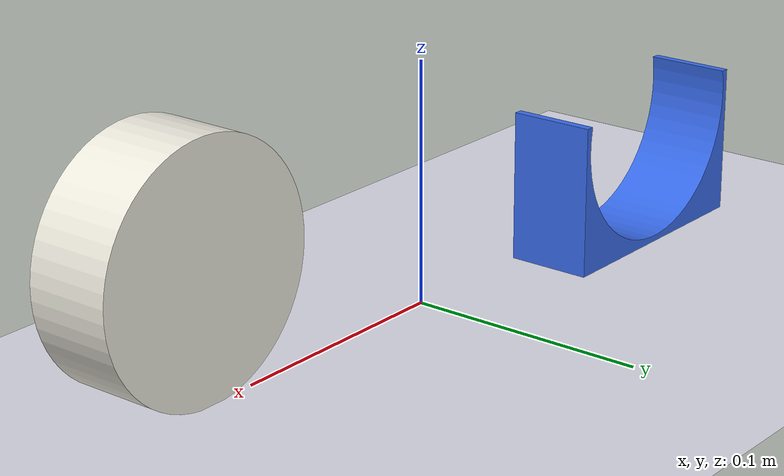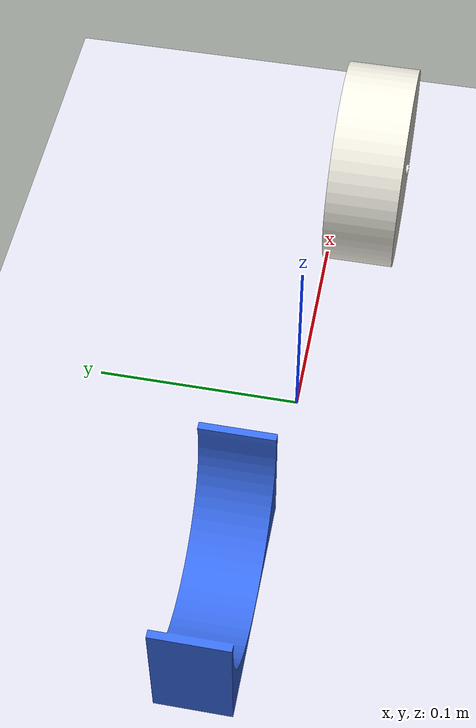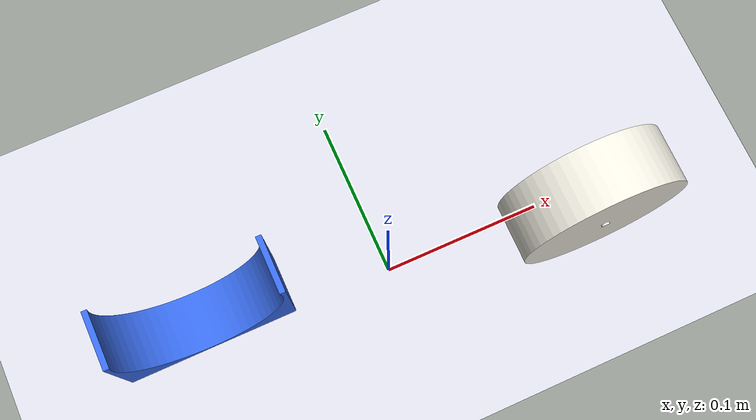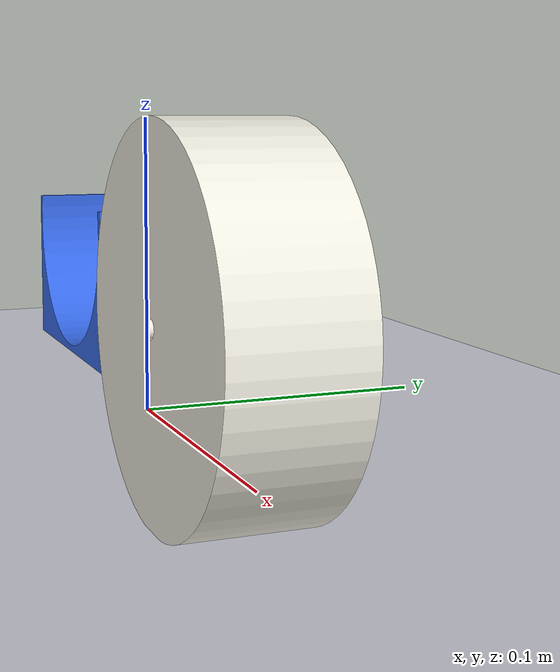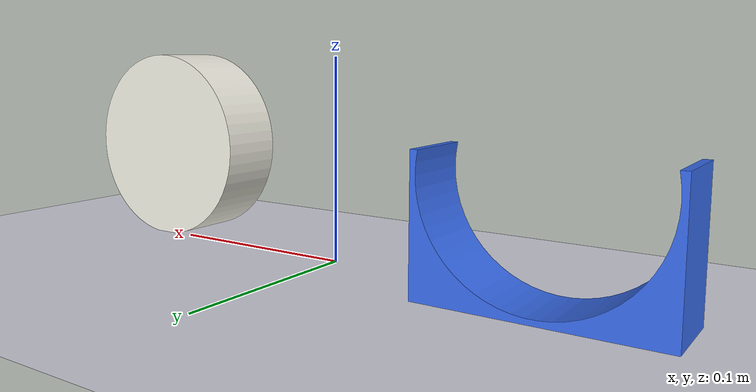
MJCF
<mujoco model="mesh_test">
  <compiler meshdir="meshes" autolimits="true"/>

  <asset>
    <mesh name="cape"  file="cape.stl"/>
    <mesh name="clock" file="clock_head.stl"/>
  </asset>

  <worldbody>
    <light pos="0 -0.4 0.5" dir="0 0.4 -1"/>
    <geom type="plane" size="0.5 0.5 0.05" rgba="0.85 0.85 0.9 1"/>

    <!-- Cape mesh, sitting on the ground at left -->
    <body pos="-0.12 0 0">
      <geom type="mesh" mesh="cape" rgba="0.22 0.42 0.92 1"/>
    </body>

    <!-- Clock-head mesh, sitting on the ground at right -->
    <body pos="0.12 0 0.05">
      <geom type="mesh" mesh="clock" rgba="0.94 0.93 0.88 1"/>
    </body>
  </worldbody>
</mujoco>
